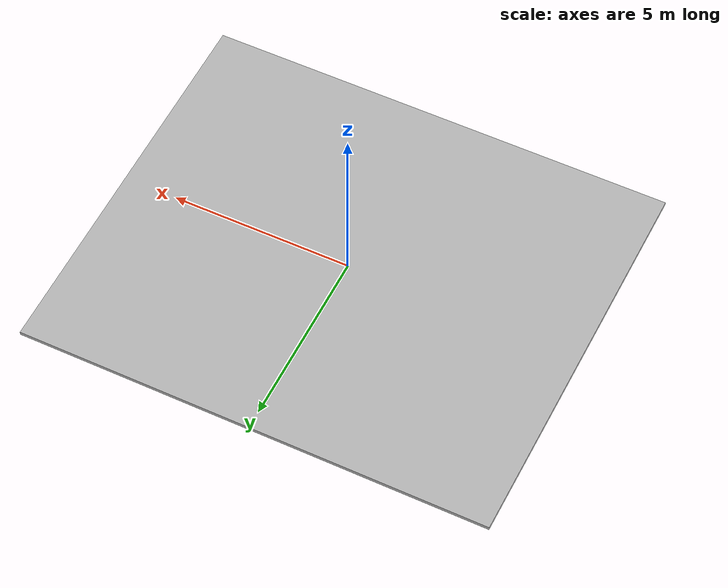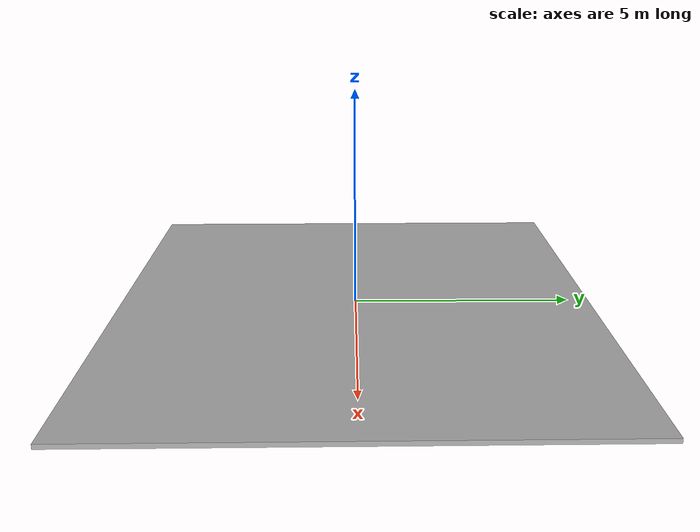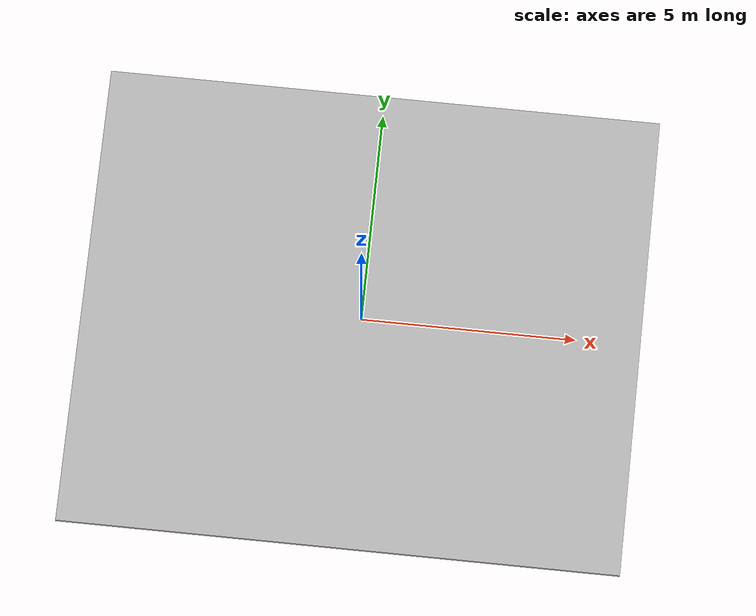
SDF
<sdf version="1.4">
  <world name="default">
    <scene>
      <ambient>0.8 0.8 0.8 1</ambient>
      <background>0.7 0.7 0.7 1</background>
      <shadows>true</shadows>
    </scene>

    <!-- A global light source -->
    <include>
      <uri>model://sun</uri>
      <pose> 0 0 2.0 0 0 0</pose>
    </include>

  <!-- Piso da sala - circuito -->
    <include>
      <uri>model://pista_circulos/pisosala</uri>
      <pose> 0 0 0 0 0 -1.57</pose>
    </include>

    <physics type="ode">
      <real_time_update_rate>1000.0</real_time_update_rate>
      <max_step_size>0.001</max_step_size>
      <real_time_factor>1</real_time_factor>
      <ode>
        <solver>
          <type>quick</type>
          <iters>150</iters>
          <precon_iters>0</precon_iters>
          <sor>1.400000</sor>
          <use_dynamic_moi_rescaling>1</use_dynamic_moi_rescaling>
        </solver>
        <constraints>
          <cfm>0.00001</cfm>
          <erp>0.2</erp>
          <contact_max_correcting_vel>2000.000000</contact_max_correcting_vel>
          <contact_surface_layer>0.01000</contact_surface_layer>
        </constraints>
      </ode>
    </physics>

    <gui fullscreen='0'>
      <camera name='user_camera'>
        <pose frame=''>0.238775 -6.8831 10.8485 -0 0.979642 1.5602</pose>
        <view_controller>orbit</view_controller>
        <projection_type>perspective</projection_type>
      </camera>
    </gui>

  </world>

</sdf>

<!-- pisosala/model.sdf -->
<sdf version="1.6">
  <model name="pisosala_forca">
    <static>true</static>
    <link name="course_link">
      <collision name="course_collision">
        <geometry>
          <plane>
            <normal>0 0 1</normal>
            <size>10 13</size>
          </plane>
        </geometry>
        <surface>
          <friction>
            <ode>
              <mu>100</mu>
              <mu2>50</mu2>
            </ode>
          </friction>
        </surface>
      </collision>
      <visual name="course_visual">
        <cast_shadows>false</cast_shadows>
        <geometry>
          <mesh>
            <uri>model://forca/pisosala/materials/scripts/piso.dae</uri>
            <scale>1 1 1</scale>
          </mesh>
        </geometry>
      </visual>
    </link>
  </model>
</sdf>
